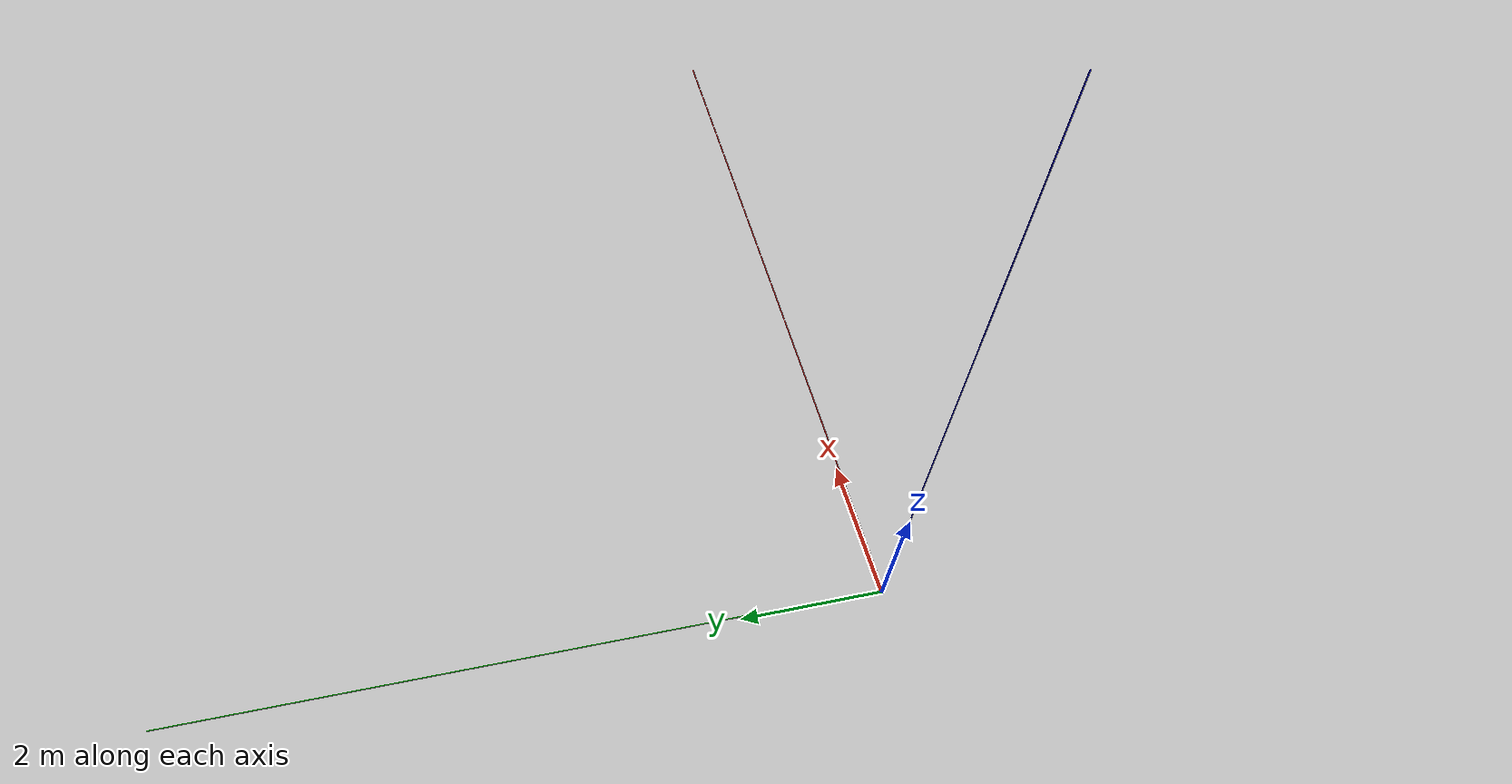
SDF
<?xml version="1.0" ?>
<sdf version="1.6">
  <world name="waves">
    <physics type="default">
      <real_time_update_rate>0</real_time_update_rate>
      <max_step_size>0.001</max_step_size>
    </physics>
    <plugin filename="gz-sim-physics-system"
            name="gz::sim::systems::Physics">
    </plugin>
    <plugin filename="gz-sim-sensors-system"
            name="gz::sim::systems::Sensors">
      <render_engine>ogre2</render_engine>
      <background_color>0.8 0.8 0.8</background_color>
    </plugin>
    <plugin filename="gz-sim-scene-broadcaster-system"
            name="gz::sim::systems::SceneBroadcaster">
    </plugin>
    <plugin filename="gz-sim-user-commands-system"
            name="gz::sim::systems::UserCommands">
    </plugin>
    <plugin filename="gz-sim-imu-system"
            name="gz::sim::systems::Imu">
    </plugin>

    <scene>
      <ambient>1.0 1.0 1.0</ambient>
      <background>0.8 0.8 0.8</background>
      <sky></sky>
    </scene>

    <light type="directional" name="sun">
      <cast_shadows>true</cast_shadows>
      <pose>0 0 10 0 0 0</pose>
      <diffuse>0.8 0.8 0.8 1</diffuse>
      <specular>0.6 0.6 0.6 1</specular>
      <direction>-0.5 0.1 -0.9</direction>
    </light>

    <include>
      <pose>0 0 0 0 0 0</pose>
      <uri>model://waves</uri>
    </include>

    <!-- ENU axes -->
    <model name="axes">
      <static>1</static>
      <link name="link">
        <visual name="r">
          <cast_shadows>0</cast_shadows>
          <pose>5 0 0.1 0 0 0</pose>
          <geometry>
            <box>
              <size>10 0.01 0.01</size>
            </box>
          </geometry>
          <material>
            <ambient>1 0 0 1</ambient>
            <diffuse>1 0 0 1</diffuse>
            <emissive>1 0 0 1</emissive>
            <specular>0.5 0.5 0.5 1</specular>
          </material>
        </visual>
        <visual name="g">
          <cast_shadows>0</cast_shadows>
          <pose>0 5 0.1 0 0 0</pose>
          <geometry>
            <box>
              <size>0.01 10 0.01</size>
            </box>
          </geometry>
          <material>
            <ambient>0 1 0 1</ambient>
            <diffuse>0 1 0 1</diffuse>
            <emissive>0 1 0 1</emissive>
            <specular>0.5 0.5 0.5 1</specular>
          </material>
        </visual>
        <visual name="b">
          <cast_shadows>0</cast_shadows>
          <pose>0 0 5.1 0 0 0</pose>
          <geometry>
            <box>
              <size>0.01 0.01 10</size>
            </box>
          </geometry>
          <material>
            <ambient>0 0 1 1</ambient>
            <diffuse>0 0 1 1</diffuse>
            <emissive>0 0 1 1</emissive>
            <specular>0.5 0.5 0.5 1</specular>
          </material>
        </visual>
      </link>
    </model>
  </world>
</sdf>

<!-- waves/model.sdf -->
<sdf version="1.6">
  <model name="waves">
    <static>true</static>
    <link name="link">
      <visual name= "wave_visual">
        <geometry>
          <mesh>
            <uri>meshes/mesh.dae</uri>
          </mesh>
        </geometry>
        <plugin
            filename="libWaveVisual.so"
            name="ignition::gazebo::systems::WaveVisual">
          <shader>
            <vertex>materials/programs/GerstnerWaves_vs_330.glsl</vertex>
            <fragment>materials/programs/GerstnerWaves_fs_330.glsl</fragment>
          </shader>
          <wavefield>
            <size>1000 1000</size>
            <cell_count>50 50</cell_count>
            <wave>
              <model>PMS</model>
              <period>5</period>
              <number>3</number>
              <scale>5.1</scale>
              <gain>0.3</gain>
              <direction>1 0</direction>
              <angle>0.4</angle>
              <tau>2.0</tau>
              <amplitude>0.0</amplitude>
              <steepness>0.0</steepness>
            </wave>
          </wavefield>
        </plugin>
        <visibility_flags>8</visibility_flags>
      </visual>
    </link>
  </model>
</sdf>
